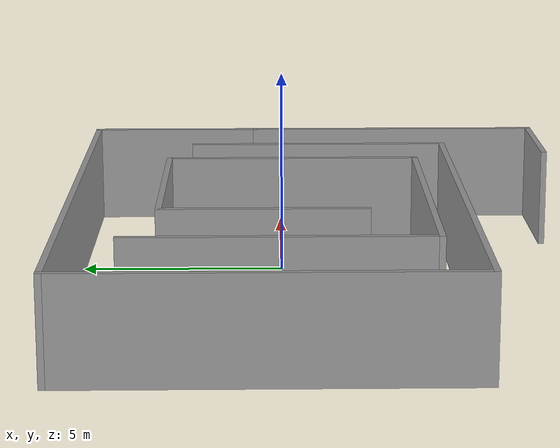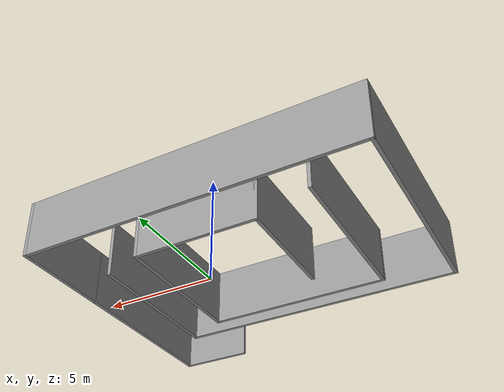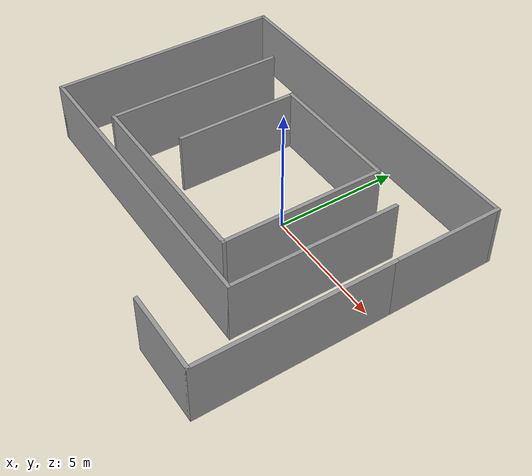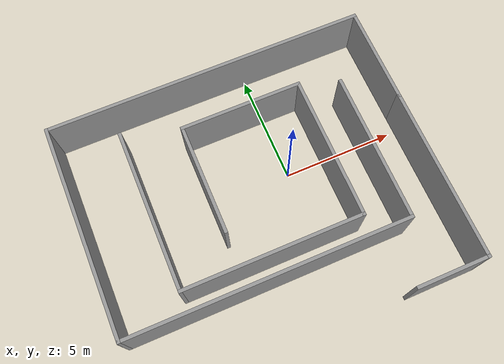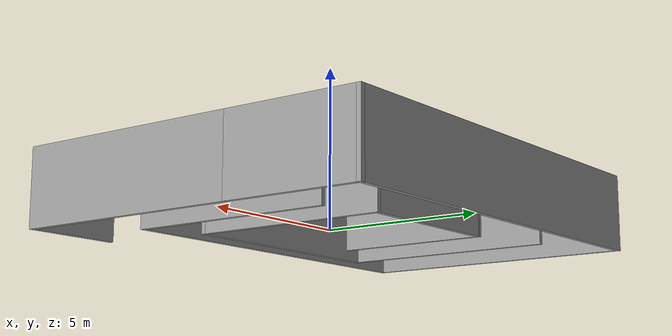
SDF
<?xml version='1.0'?>
<sdf version='1.6'>
  <model name='mymap3'>
    <pose frame=''>-1.76731 -0.943893 0 0 -0 0</pose>
    <link name='Wall_24'>
      <collision name='Wall_24_Collision'>
        <geometry>
          <box>
            <size>3.25 0.15 2.5</size>
          </box>
        </geometry>
        <pose frame=''>0 0 1.25 0 -0 0</pose>
      </collision>
      <visual name='Wall_24_Visual'>
        <pose frame=''>0 0 1.25 0 -0 0</pose>
        <geometry>
          <box>
            <size>3.25 0.15 2.5</size>
          </box>
        </geometry>
        <material>
          <script>
            <uri>file://media/materials/scripts/gazebo.material</uri>
            <name>Gazebo/Grey</name>
          </script>
          <ambient>1 1 1 1</ambient>
        </material>
      </visual>
      <pose frame=''>5.625 -5.975 0 0 -0 0</pose>
    </link>
    <link name='Wall_25'>
      <collision name='Wall_25_Collision'>
        <geometry>
          <box>
            <size>7.75 0.15 2.5</size>
          </box>
        </geometry>
        <pose frame=''>0 0 1.25 0 -0 0</pose>
      </collision>
      <visual name='Wall_25_Visual'>
        <pose frame=''>0 0 1.25 0 -0 0</pose>
        <geometry>
          <box>
            <size>7.75 0.15 2.5</size>
          </box>
        </geometry>
        <material>
          <script>
            <uri>file://media/materials/scripts/gazebo.material</uri>
            <name>Gazebo/Grey</name>
          </script>
          <ambient>1 1 1 1</ambient>
        </material>
      </visual>
      <pose frame=''>7.175 -2.175 0 0 -0 1.5708</pose>
    </link>
    <link name='Wall_27'>
      <collision name='Wall_27_Collision'>
        <geometry>
          <box>
            <size>4.5 0.15 2.5</size>
          </box>
        </geometry>
        <pose frame=''>0 0 1.25 0 -0 0</pose>
      </collision>
      <visual name='Wall_27_Visual'>
        <pose frame=''>0 0 1.25 0 -0 0</pose>
        <geometry>
          <box>
            <size>4.5 0.15 2.5</size>
          </box>
        </geometry>
        <material>
          <script>
            <uri>file://media/materials/scripts/gazebo.material</uri>
            <name>Gazebo/Grey</name>
          </script>
          <ambient>1 1 1 1</ambient>
        </material>
      </visual>
      <pose frame=''>7.175 3.8 0 0 -0 1.5708</pose>
    </link>
    <link name='Wall_28'>
      <collision name='Wall_28_Collision'>
        <geometry>
          <box>
            <size>14.5 0.15 2.5</size>
          </box>
        </geometry>
        <pose frame=''>0 0 1.25 0 -0 0</pose>
      </collision>
      <visual name='Wall_28_Visual'>
        <pose frame=''>0 0 1.25 0 -0 0</pose>
        <geometry>
          <box>
            <size>14.5 0.15 2.5</size>
          </box>
        </geometry>
        <material>
          <script>
            <uri>file://media/materials/scripts/gazebo.material</uri>
            <name>Gazebo/Grey</name>
          </script>
          <ambient>1 1 1 1</ambient>
        </material>
      </visual>
      <pose frame=''>0 5.975 0 0 -0 3.14159</pose>
    </link>
    <link name='Wall_29'>
      <collision name='Wall_29_Collision'>
        <geometry>
          <box>
            <size>9.5 0.15 2.5</size>
          </box>
        </geometry>
        <pose frame=''>0 0 1.25 0 -0 0</pose>
      </collision>
      <visual name='Wall_29_Visual'>
        <pose frame=''>0 0 1.25 0 -0 0</pose>
        <geometry>
          <box>
            <size>9.5 0.15 2.5</size>
          </box>
        </geometry>
        <material>
          <script>
            <uri>file://media/materials/scripts/gazebo.material</uri>
            <name>Gazebo/Grey</name>
          </script>
          <ambient>1 1 1 1</ambient>
        </material>
      </visual>
      <pose frame=''>-7.175 1.3 0 0 0 -1.5708</pose>
    </link>
    <link name='Wall_30'>
      <collision name='Wall_30_Collision'>
        <geometry>
          <box>
            <size>12.5 0.15 2.5</size>
          </box>
        </geometry>
        <pose frame=''>0 0 1.25 0 -0 0</pose>
      </collision>
      <visual name='Wall_30_Visual'>
        <pose frame=''>0 0 1.25 0 -0 0</pose>
        <geometry>
          <box>
            <size>12.5 0.15 2.5</size>
          </box>
        </geometry>
        <material>
          <script>
            <uri>file://media/materials/scripts/gazebo.material</uri>
            <name>Gazebo/Grey</name>
          </script>
          <ambient>1 1 1 1</ambient>
        </material>
      </visual>
      <pose frame=''>-1 -3.375 0 0 -0 0</pose>
    </link>
    <link name='Wall_31'>
      <collision name='Wall_31_Collision'>
        <geometry>
          <box>
            <size>6.75 0.15 2.5</size>
          </box>
        </geometry>
        <pose frame=''>0 0 1.25 0 -0 0</pose>
      </collision>
      <visual name='Wall_31_Visual'>
        <pose frame=''>0 0 1.25 0 -0 0</pose>
        <geometry>
          <box>
            <size>6.75 0.15 2.5</size>
          </box>
        </geometry>
        <material>
          <script>
            <uri>file://media/materials/scripts/gazebo.material</uri>
            <name>Gazebo/Grey</name>
          </script>
          <ambient>1 1 1 1</ambient>
        </material>
      </visual>
      <pose frame=''>5.175 -0.075 0 0 -0 1.5708</pose>
    </link>
    <link name='Wall_33'>
      <collision name='Wall_33_Collision'>
        <geometry>
          <box>
            <size>5 0.15 2.5</size>
          </box>
        </geometry>
        <pose frame=''>0 0 1.25 0 -0 0</pose>
      </collision>
      <visual name='Wall_33_Visual'>
        <pose frame=''>0 0 1.25 0 -0 0</pose>
        <geometry>
          <box>
            <size>5 0.15 2.5</size>
          </box>
        </geometry>
        <material>
          <script>
            <uri>file://media/materials/scripts/gazebo.material</uri>
            <name>Gazebo/Grey</name>
          </script>
          <ambient>1 1 1 1</ambient>
        </material>
      </visual>
      <pose frame=''>-1.90158 1.40818 0 0 -0 1.5708</pose>
    </link>
    <link name='Wall_34'>
      <collision name='Wall_34_Collision'>
        <geometry>
          <box>
            <size>5.5 0.15 2.5</size>
          </box>
        </geometry>
        <pose frame=''>0 0 1.25 0 -0 0</pose>
      </collision>
      <visual name='Wall_34_Visual'>
        <pose frame=''>0 0 1.25 0 -0 0</pose>
        <geometry>
          <box>
            <size>5.5 0.15 2.5</size>
          </box>
        </geometry>
        <material>
          <script>
            <uri>file://media/materials/scripts/gazebo.material</uri>
            <name>Gazebo/Grey</name>
          </script>
          <ambient>1 1 1 1</ambient>
        </material>
      </visual>
      <pose frame=''>0.773418 3.83318 0 0 -0 0</pose>
    </link>
    <link name='Wall_35'>
      <collision name='Wall_35_Collision'>
        <geometry>
          <box>
            <size>6.5 0.15 2.5</size>
          </box>
        </geometry>
        <pose frame=''>0 0 1.25 0 -0 0</pose>
      </collision>
      <visual name='Wall_35_Visual'>
        <pose frame=''>0 0 1.25 0 -0 0</pose>
        <geometry>
          <box>
            <size>6.5 0.15 2.5</size>
          </box>
        </geometry>
        <material>
          <script>
            <uri>file://media/materials/scripts/gazebo.material</uri>
            <name>Gazebo/Grey</name>
          </script>
          <ambient>1 1 1 1</ambient>
        </material>
      </visual>
      <pose frame=''>3.44842 0.658182 0 0 0 -1.5708</pose>
    </link>
    <link name='Wall_36'>
      <collision name='Wall_36_Collision'>
        <geometry>
          <box>
            <size>8 0.15 2.5</size>
          </box>
        </geometry>
        <pose frame=''>0 0 1.25 0 -0 0</pose>
      </collision>
      <visual name='Wall_36_Visual'>
        <pose frame=''>0 0 1.25 0 -0 0</pose>
        <geometry>
          <box>
            <size>8 0.15 2.5</size>
          </box>
        </geometry>
        <material>
          <script>
            <uri>file://media/materials/scripts/gazebo.material</uri>
            <name>Gazebo/Grey</name>
          </script>
          <ambient>1 1 1 1</ambient>
        </material>
      </visual>
      <pose frame=''>-0.476583 -2.51682 0 0 -0 3.14159</pose>
    </link>
    <link name='Wall_37'>
      <collision name='Wall_37_Collision'>
        <geometry>
          <box>
            <size>7.25 0.15 2.5</size>
          </box>
        </geometry>
        <pose frame=''>0 0 1.25 0 -0 0</pose>
      </collision>
      <visual name='Wall_37_Visual'>
        <pose frame=''>0 0 1.25 0 -0 0</pose>
        <geometry>
          <box>
            <size>7.25 0.15 2.5</size>
          </box>
        </geometry>
        <material>
          <script>
            <uri>file://media/materials/scripts/gazebo.material</uri>
            <name>Gazebo/Grey</name>
          </script>
          <ambient>1 1 1 1</ambient>
        </material>
      </visual>
      <pose frame=''>-4.40158 1.03318 0 0 -0 1.5708</pose>
    </link>
    <static>1</static>
  </model>
</sdf>
